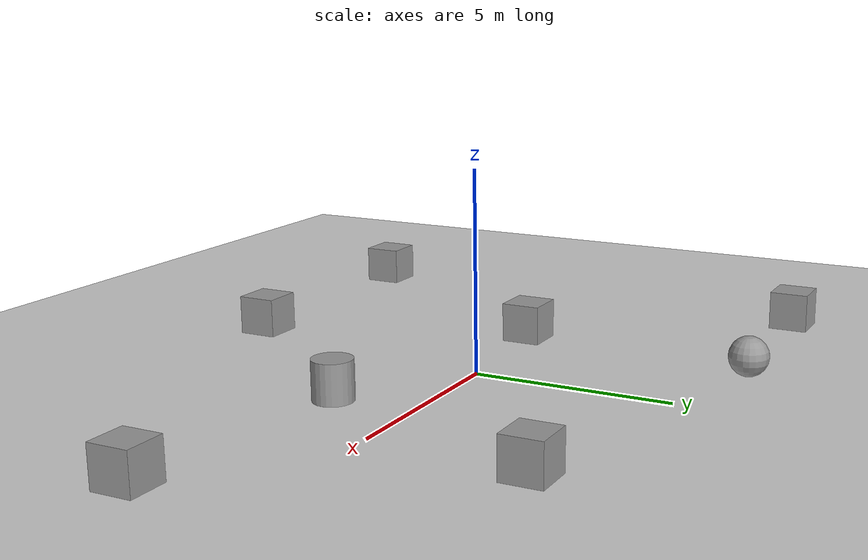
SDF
<sdf version="1.7">
 <world name="default">
  <light name="sun" type="directional">
   <pose>0 0 10 0 -0 0</pose>
   <diffuse>0.8 0.8 0.8 1</diffuse>
   <specular>0.2 0.2 0.2 1</specular>
   <attenuation>
    <range>1000</range>
    <constant>0.9</constant>
    <linear>0.01</linear>
    <quadratic>0.001</quadratic>
   </attenuation>
   <direction>-0.5 0.1 -0.9</direction>
   <spot><inner_angle>0</inner_angle><outer_angle>0</outer_angle><falloff>0</falloff></spot>
  </light>
  <model name="ground_plane">
   <static>1</static>
   <link name="link">
    <collision name="collision">
     <geometry><plane><normal>0 0 1</normal><size>100 100</size></plane></geometry>
     <surface>
      <contact><collide_bitmask>65535</collide_bitmask></contact>
      <friction><ode><mu>100</mu><mu2>50</mu2></ode></friction>
     </surface>
    </collision>
    <visual name="visual">
     <cast_shadows>0</cast_shadows>
     <geometry><plane><normal>0 0 1</normal><size>100 100</size></plane></geometry>
     <material>
      <script><uri>file://media/materials/scripts/gazebo.material</uri><name>Gazebo/Grey</name></script>
     </material>
    </visual>
   </link>
  </model>
  <gravity>0 0 -9.8</gravity>
  <magnetic_field>6e-06 2.3e-05 -4.2e-05</magnetic_field>
  <atmosphere type="adiabatic"/>
  <physics type="ode">
   <max_step_size>0.001</max_step_size>
   <real_time_factor>1</real_time_factor>
   <real_time_update_rate>1000</real_time_update_rate>
  </physics>
  <scene><ambient>0.4 0.4 0.4 1</ambient><background>0.7 0.7 0.7 1</background><shadows>1</shadows></scene>
  <audio><device>default</device></audio>
  <spherical_coordinates>
   <surface_model>EARTH_WGS84</surface_model>
   <latitude_deg>0</latitude_deg>
   <longitude_deg>0</longitude_deg>
   <elevation>0</elevation>
   <heading_deg>0</heading_deg>
  </spherical_coordinates>
  <model name="unit_box">
   <pose>-3.34717 -0.217553 0.499995 -1e-05 -0 -0</pose>
   <link name="link">
    <inertial>
     <mass>1</mass>
     <inertia>
      <ixx>0.166667</ixx>
      <ixy>0</ixy>
      <ixz>0</ixz>
      <iyy>0.166667</iyy>
      <iyz>0</iyz>
      <izz>0.166667</izz>
     </inertia>
    </inertial>
    <collision name="collision"><geometry><box><size>1 1 1</size></box></geometry></collision>
    <visual name="visual">
     <geometry><box><size>1 1 1</size></box></geometry>
     <material>
      <script><name>Gazebo/Grey</name><uri>file://media/materials/scripts/gazebo.material</uri></script>
     </material>
    </visual>
   </link>
  </model>
  <model name="unit_box_0">
   <pose>5.38375 4.01809 0.499995 0 1e-05 0</pose>
   <link name="link">
    <inertial>
     <mass>1</mass>
     <inertia>
      <ixx>0.166667</ixx>
      <ixy>0</ixy>
      <ixz>0</ixz>
      <iyy>0.166667</iyy>
      <iyz>0</iyz>
      <izz>0.166667</izz>
     </inertia>
    </inertial>
    <collision name="collision"><geometry><box><size>1 1 1</size></box></geometry></collision>
    <visual name="visual">
     <geometry><box><size>1 1 1</size></box></geometry>
     <material>
      <script><name>Gazebo/Grey</name><uri>file://media/materials/scripts/gazebo.material</uri></script>
     </material>
    </visual>
   </link>
  </model>
  <model name="unit_sphere">
   <pose>-2.70105 5.96027 0.5 0 -0 0</pose>
   <link name="link">
    <inertial>
     <mass>1</mass>
     <inertia><ixx>0.1</ixx><ixy>0</ixy><ixz>0</ixz><iyy>0.1</iyy><iyz>0</iyz><izz>0.1</izz></inertia>
    </inertial>
    <collision name="collision"><geometry><sphere><radius>0.5</radius></sphere></geometry></collision>
    <visual name="visual">
     <geometry><sphere><radius>0.5</radius></sphere></geometry>
     <material>
      <script><name>Gazebo/Grey</name><uri>file://media/materials/scripts/gazebo.material</uri></script>
     </material>
    </visual>
   </link>
  </model>
  <model name="unit_box_1">
   <pose>-0.959913 -6.84029 0.499995 0 1e-05 0</pose>
   <link name="link">
    <inertial>
     <mass>1</mass>
     <inertia>
      <ixx>0.166667</ixx>
      <ixy>0</ixy>
      <ixz>0</ixz>
      <iyy>0.166667</iyy>
      <iyz>0</iyz>
      <izz>0.166667</izz>
     </inertia>
    </inertial>
    <collision name="collision"><geometry><box><size>1 1 1</size></box></geometry></collision>
    <visual name="visual">
     <geometry><box><size>1 1 1</size></box></geometry>
     <material>
      <script><name>Gazebo/Grey</name><uri>file://media/materials/scripts/gazebo.material</uri></script>
     </material>
    </visual>
   </link>
  </model>
  <model name="unit_box_2">
   <pose>9.15492 -2.71752 0.499995 -1e-05 -0 -0</pose>
   <link name="link">
    <inertial>
     <mass>1</mass>
     <inertia>
      <ixx>0.166667</ixx>
      <ixy>0</ixy>
      <ixz>0</ixz>
      <iyy>0.166667</iyy>
      <iyz>0</iyz>
      <izz>0.166667</izz>
     </inertia>
    </inertial>
    <collision name="collision"><geometry><box><size>1 1 1</size></box></geometry></collision>
    <visual name="visual">
     <geometry><box><size>1 1 1</size></box></geometry>
     <material>
      <script><name>Gazebo/Grey</name><uri>file://media/materials/scripts/gazebo.material</uri></script>
     </material>
    </visual>
   </link>
  </model>
  <model name="unit_cylinder">
   <pose>3.15978 -2.02684 0.499997 3e-06 4e-06 -0</pose>
   <link name="link">
    <inertial>
     <mass>1</mass>
     <inertia><ixx>0.145833</ixx><ixy>0</ixy><ixz>0</ixz><iyy>0.145833</iyy><iyz>0</iyz><izz>0.125</izz></inertia>
    </inertial>
    <collision name="collision">
     <geometry><cylinder><radius>0.5</radius><length>1</length></cylinder></geometry>
    </collision>
    <visual name="visual">
     <geometry><cylinder><radius>0.5</radius><length>1</length></cylinder></geometry>
     <material>
      <script><name>Gazebo/Grey</name><uri>file://media/materials/scripts/gazebo.material</uri></script>
     </material>
    </visual>
   </link>
  </model>
  <model name="unit_box_3">
   <pose>-7.55691 -6.98421 0.499995 -1e-05 -0 0</pose>
   <link name="link">
    <inertial>
     <mass>1</mass>
     <inertia>
      <ixx>0.166667</ixx>
      <ixy>0</ixy>
      <ixz>0</ixz>
      <iyy>0.166667</iyy>
      <iyz>0</iyz>
      <izz>0.166667</izz>
     </inertia>
    </inertial>
    <collision name="collision"><geometry><box><size>1 1 1</size></box></geometry></collision>
    <visual name="visual">
     <geometry><box><size>1 1 1</size></box></geometry>
     <material>
      <script><name>Gazebo/Grey</name><uri>file://media/materials/scripts/gazebo.material</uri></script>
     </material>
    </visual>
   </link>
  </model>
  <model name="unit_box_4">
   <pose>-7.57734 5.7465 0.5 0 -0 0</pose>
   <link name="link">
    <inertial>
     <mass>1</mass>
     <inertia>
      <ixx>0.166667</ixx>
      <ixy>0</ixy>
      <ixz>0</ixz>
      <iyy>0.166667</iyy>
      <iyz>0</iyz>
      <izz>0.166667</izz>
     </inertia>
    </inertial>
    <collision name="collision"><geometry><box><size>1 1 1</size></box></geometry></collision>
    <visual name="visual">
     <geometry><box><size>1 1 1</size></box></geometry>
     <material>
      <script><name>Gazebo/Grey</name><uri>file://media/materials/scripts/gazebo.material</uri></script>
     </material>
    </visual>
   </link>
  </model>
 </world>
</sdf>
